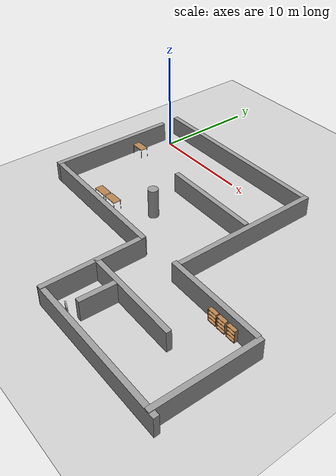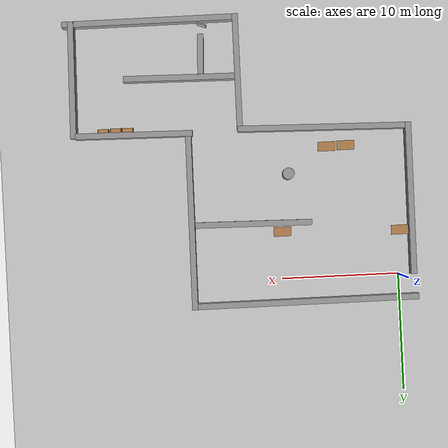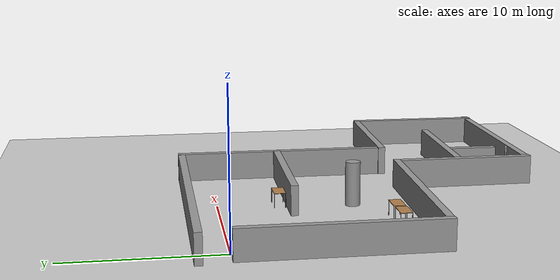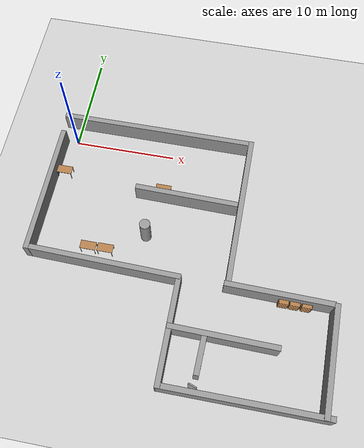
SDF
<sdf version="1.7">
 <world name="default">
  <light name="sun" type="directional">
   <pose>0 0 10 0 -0 0</pose>
   <diffuse>0.8 0.8 0.8 1</diffuse>
   <specular>0.2 0.2 0.2 1</specular>
   <attenuation>
    <range>1000</range>
    <constant>0.9</constant>
    <linear>0.01</linear>
    <quadratic>0.001</quadratic>
   </attenuation>
   <direction>-0.5 0.1 -0.9</direction>
   <spot><inner_angle>0</inner_angle><outer_angle>0</outer_angle><falloff>0</falloff></spot>
  </light>
  <model name="ground_plane">
   <static>1</static>
   <link name="link">
    <collision name="collision">
     <geometry><plane><normal>0 0 1</normal><size>100 100</size></plane></geometry>
     <surface><friction><ode><mu>100</mu><mu2>50</mu2></ode></friction></surface>
    </collision>
    <visual name="visual">
     <cast_shadows>0</cast_shadows>
     <geometry><plane><normal>0 0 1</normal><size>100 100</size></plane></geometry>
     <material>
      <script><uri>file://media/materials/scripts/gazebo.material</uri><name>Gazebo/Grey</name></script>
     </material>
    </visual>
   </link>
  </model>
  <gravity>0 0 -9.8</gravity>
  <magnetic_field>6e-06 2.3e-05 -4.2e-05</magnetic_field>
  <atmosphere type="adiabatic"/>
  <physics type="ode">
   <max_step_size>0.001</max_step_size>
   <real_time_factor>1</real_time_factor>
   <real_time_update_rate>1000</real_time_update_rate>
  </physics>
  <scene><ambient>0.4 0.4 0.4 1</ambient><background>0.7 0.7 0.7 1</background><shadows>1</shadows></scene>
  <audio><device>default</device></audio>
  <spherical_coordinates>
   <surface_model>EARTH_WGS84</surface_model>
   <latitude_deg>0</latitude_deg>
   <longitude_deg>0</longitude_deg>
   <elevation>0</elevation>
   <heading_deg>0</heading_deg>
  </spherical_coordinates>
  <model name="wall">
   <link name="link">
    <inertial>
     <mass>1</mass>
     <inertia>
      <ixx>0.166667</ixx>
      <ixy>0</ixy>
      <ixz>0</ixz>
      <iyy>0.166667</iyy>
      <iyz>0</iyz>
      <izz>0.166667</izz>
     </inertia>
    </inertial>
    <kinematic>1</kinematic>
    <visual name="visual">
     <geometry><box><size>19.1622 0.5 2</size></box></geometry>
     <material>
      <script><name>Gazebo/Grey</name><uri>file://media/materials/scripts/gazebo.material</uri></script>
      <shader type="pixel"><normal_map>__default__</normal_map></shader>
      <ambient>0.3 0.3 0.3 1</ambient>
      <diffuse>0.7 0.7 0.7 1</diffuse>
      <specular>0.01 0.01 0.01 1</specular>
      <emissive>0 0 0 1</emissive>
     </material>
    </visual>
    <collision name="collision">
     <laser_retro>100</laser_retro>
     <geometry><box><size>19.1622 0.5 3</size></box></geometry>
     <surface>
      <friction>
       <ode><mu>1</mu><mu2>1</mu2><fdir1>0 0 0</fdir1><slip1>0</slip1><slip2>0</slip2></ode>
       <torsional>
        <coefficient>1</coefficient>
        <patch_radius>0</patch_radius>
        <surface_radius>0</surface_radius>
        <use_patch_radius>1</use_patch_radius>
        <ode><slip>0</slip></ode>
       </torsional>
      </friction>
      <bounce><restitution_coefficient>0</restitution_coefficient><threshold>1e+06</threshold></bounce>
      <contact>
       <collide_without_contact>0</collide_without_contact>
       <collide_without_contact_bitmask>1</collide_without_contact_bitmask>
       <collide_bitmask>1</collide_bitmask>
       <ode>
        <soft_cfm>0</soft_cfm>
        <soft_erp>0.2</soft_erp>
        <kp>1e+13</kp>
        <kd>1</kd>
        <max_vel>0.01</max_vel>
        <min_depth>0</min_depth>
       </ode>
       <bullet>
        <split_impulse>1</split_impulse>
        <split_impulse_penetration_threshold>-0.01</split_impulse_penetration_threshold>
        <soft_cfm>0</soft_cfm>
        <soft_erp>0.2</soft_erp>
        <kp>1e+13</kp>
        <kd>1</kd>
       </bullet>
      </contact>
     </surface>
    </collision>
   </link>
   <static>0</static>
   <pose>8.0148 1.96015 0.938535 0 -0 0</pose>
  </model>
  <model name="wall_gate">
   <link name="link">
    <inertial>
     <mass>1</mass>
     <inertia>
      <ixx>0.166667</ixx>
      <ixy>0</ixy>
      <ixz>0</ixz>
      <iyy>0.166667</iyy>
      <iyz>0</iyz>
      <izz>0.166667</izz>
     </inertia>
    </inertial>
    <kinematic>1</kinematic>
    <visual name="visual">
     <geometry><box><size>13 0.5 2</size></box></geometry>
     <material>
      <script><name>Gazebo/Grey</name><uri>file://media/materials/scripts/gazebo.material</uri></script>
      <shader type="pixel"><normal_map>__default__</normal_map></shader>
      <ambient>0.3 0.3 0.3 1</ambient>
      <diffuse>0.7 0.7 0.7 1</diffuse>
      <specular>0.01 0.01 0.01 1</specular>
      <emissive>0 0 0 1</emissive>
     </material>
     <pose>-0.05 0 0 0 -0 0</pose>
    </visual>
    <collision name="collision">
     <laser_retro>100</laser_retro>
     <geometry><box><size>13 0.5 3</size></box></geometry>
     <surface>
      <friction>
       <ode><mu>1</mu><mu2>1</mu2><fdir1>0 0 0</fdir1><slip1>0</slip1><slip2>0</slip2></ode>
       <torsional>
        <coefficient>1</coefficient>
        <patch_radius>0</patch_radius>
        <surface_radius>0</surface_radius>
        <use_patch_radius>1</use_patch_radius>
        <ode><slip>0</slip></ode>
       </torsional>
      </friction>
      <bounce><restitution_coefficient>0</restitution_coefficient><threshold>1e+06</threshold></bounce>
      <contact>
       <collide_without_contact>0</collide_without_contact>
       <collide_without_contact_bitmask>1</collide_without_contact_bitmask>
       <collide_bitmask>1</collide_bitmask>
       <ode>
        <soft_cfm>0</soft_cfm>
        <soft_erp>0.2</soft_erp>
        <kp>1e+13</kp>
        <kd>1</kd>
        <max_vel>0.01</max_vel>
        <min_depth>0</min_depth>
       </ode>
       <bullet>
        <split_impulse>1</split_impulse>
        <split_impulse_penetration_threshold>-0.01</split_impulse_penetration_threshold>
        <soft_cfm>0</soft_cfm>
        <soft_erp>0.2</soft_erp>
        <kp>1e+13</kp>
        <kd>1</kd>
       </bullet>
      </contact>
     </surface>
    </collision>
   </link>
   <static>0</static>
   <pose>-1.2848 -6.53102 1.02614 0 0 -1.57913</pose>
  </model>
  <model name="table">
   <static>1</static>
   <link name="link">
    <collision name="surface">
     <pose>0 0 1 0 -0 0</pose>
     <geometry><box><size>1.5 0.8 0.03</size></box></geometry>
     <surface><friction><ode><mu>0.6</mu><mu2>0.6</mu2></ode></friction></surface>
    </collision>
    <visual name="visual1">
     <pose>0 0 1 0 -0 0</pose>
     <geometry><box><size>1.5 0.8 0.03</size></box></geometry>
     <material>
      <script><uri>file://media/materials/scripts/gazebo.material</uri><name>Gazebo/Wood</name></script>
     </material>
    </visual>
    <collision name="front_left_leg">
     <pose>0.68 0.38 0.5 0 -0 0</pose>
     <geometry><cylinder><radius>0.02</radius><length>1</length></cylinder></geometry>
    </collision>
    <visual name="front_left_leg">
     <pose>0.68 0.38 0.5 0 -0 0</pose>
     <geometry><cylinder><radius>0.02</radius><length>1</length></cylinder></geometry>
     <material>
      <script><uri>file://media/materials/scripts/gazebo.material</uri><name>Gazebo/Grey</name></script>
     </material>
    </visual>
    <collision name="front_right_leg">
     <pose>0.68 -0.38 0.5 0 -0 0</pose>
     <geometry><cylinder><radius>0.02</radius><length>1</length></cylinder></geometry>
    </collision>
    <visual name="front_right_leg">
     <pose>0.68 -0.38 0.5 0 -0 0</pose>
     <geometry><cylinder><radius>0.02</radius><length>1</length></cylinder></geometry>
     <material>
      <script><uri>file://media/materials/scripts/gazebo.material</uri><name>Gazebo/Grey</name></script>
     </material>
    </visual>
    <collision name="back_right_leg">
     <pose>-0.68 -0.38 0.5 0 -0 0</pose>
     <geometry><cylinder><radius>0.02</radius><length>1</length></cylinder></geometry>
    </collision>
    <visual name="back_right_leg">
     <pose>-0.68 -0.38 0.5 0 -0 0</pose>
     <geometry><cylinder><radius>0.02</radius><length>1</length></cylinder></geometry>
     <material>
      <script><uri>file://media/materials/scripts/gazebo.material</uri><name>Gazebo/Grey</name></script>
     </material>
    </visual>
    <collision name="back_left_leg">
     <pose>-0.68 0.38 0.5 0 -0 0</pose>
     <geometry><cylinder><radius>0.02</radius><length>1</length></cylinder></geometry>
    </collision>
    <visual name="back_left_leg">
     <pose>-0.68 0.38 0.5 0 -0 0</pose>
     <geometry><cylinder><radius>0.02</radius><length>1</length></cylinder></geometry>
     <material>
      <script><uri>file://media/materials/scripts/gazebo.material</uri><name>Gazebo/Grey</name></script>
     </material>
    </visual>
   </link>
   <pose>4.03644 -11.2797 0 0 -0 0</pose>
  </model>
  <model name="table_0">
   <static>1</static>
   <link name="link">
    <collision name="surface">
     <pose>0 0 1 0 -0 0</pose>
     <geometry><box><size>1.5 0.8 0.03</size></box></geometry>
     <surface><friction><ode><mu>0.6</mu><mu2>0.6</mu2></ode></friction></surface>
    </collision>
    <visual name="visual1">
     <pose>0 0 1 0 -0 0</pose>
     <geometry><box><size>1.5 0.8 0.03</size></box></geometry>
     <material>
      <script><uri>file://media/materials/scripts/gazebo.material</uri><name>Gazebo/Wood</name></script>
     </material>
    </visual>
    <collision name="front_left_leg">
     <pose>0.68 0.38 0.5 0 -0 0</pose>
     <geometry><cylinder><radius>0.02</radius><length>1</length></cylinder></geometry>
    </collision>
    <visual name="front_left_leg">
     <pose>0.68 0.38 0.5 0 -0 0</pose>
     <geometry><cylinder><radius>0.02</radius><length>1</length></cylinder></geometry>
     <material>
      <script><uri>file://media/materials/scripts/gazebo.material</uri><name>Gazebo/Grey</name></script>
     </material>
    </visual>
    <collision name="front_right_leg">
     <pose>0.68 -0.38 0.5 0 -0 0</pose>
     <geometry><cylinder><radius>0.02</radius><length>1</length></cylinder></geometry>
    </collision>
    <visual name="front_right_leg">
     <pose>0.68 -0.38 0.5 0 -0 0</pose>
     <geometry><cylinder><radius>0.02</radius><length>1</length></cylinder></geometry>
     <material>
      <script><uri>file://media/materials/scripts/gazebo.material</uri><name>Gazebo/Grey</name></script>
     </material>
    </visual>
    <collision name="back_right_leg">
     <pose>-0.68 -0.38 0.5 0 -0 0</pose>
     <geometry><cylinder><radius>0.02</radius><length>1</length></cylinder></geometry>
    </collision>
    <visual name="back_right_leg">
     <pose>-0.68 -0.38 0.5 0 -0 0</pose>
     <geometry><cylinder><radius>0.02</radius><length>1</length></cylinder></geometry>
     <material>
      <script><uri>file://media/materials/scripts/gazebo.material</uri><name>Gazebo/Grey</name></script>
     </material>
    </visual>
    <collision name="back_left_leg">
     <pose>-0.68 0.38 0.5 0 -0 0</pose>
     <geometry><cylinder><radius>0.02</radius><length>1</length></cylinder></geometry>
    </collision>
    <visual name="back_left_leg">
     <pose>-0.68 0.38 0.5 0 -0 0</pose>
     <geometry><cylinder><radius>0.02</radius><length>1</length></cylinder></geometry>
     <material>
      <script><uri>file://media/materials/scripts/gazebo.material</uri><name>Gazebo/Grey</name></script>
     </material>
    </visual>
   </link>
   <pose>5.6729 -11.2473 0 0 -0 0</pose>
  </model>
  <model name="unit_cylinder">
   <link name="link">
    <inertial>
     <mass>1</mass>
     <inertia><ixx>0.145833</ixx><ixy>0</ixy><ixz>0</ixz><iyy>0.145833</iyy><iyz>0</iyz><izz>0.125</izz></inertia>
    </inertial>
    <visual name="visual">
     <geometry><cylinder><radius>0.5</radius><length>3</length></cylinder></geometry>
     <material>
      <script><name>Gazebo/Grey</name><uri>file://media/materials/scripts/gazebo.material</uri></script>
      <shader type="pixel"><normal_map>__default__</normal_map></shader>
      <ambient>0.3 0.3 0.3 1</ambient>
      <diffuse>0.7 0.7 0.7 1</diffuse>
      <specular>0.01 0.01 0.01 1</specular>
      <emissive>0 0 0 1</emissive>
     </material>
    </visual>
    <collision name="collision">
     <laser_retro>100</laser_retro>
     <geometry><cylinder><radius>0.5</radius><length>3</length></cylinder></geometry>
     <surface>
      <friction>
       <ode><mu>1</mu><mu2>1</mu2><fdir1>0 0 0</fdir1><slip1>0</slip1><slip2>0</slip2></ode>
       <torsional>
        <coefficient>1</coefficient>
        <patch_radius>0</patch_radius>
        <surface_radius>0</surface_radius>
        <use_patch_radius>1</use_patch_radius>
        <ode><slip>0</slip></ode>
       </torsional>
      </friction>
      <bounce><restitution_coefficient>0</restitution_coefficient><threshold>1e+06</threshold></bounce>
      <contact>
       <collide_without_contact>0</collide_without_contact>
       <collide_without_contact_bitmask>1</collide_without_contact_bitmask>
       <collide_bitmask>1</collide_bitmask>
       <ode>
        <soft_cfm>0</soft_cfm>
        <soft_erp>0.2</soft_erp>
        <kp>1e+13</kp>
        <kd>1</kd>
        <max_vel>0.01</max_vel>
        <min_depth>0</min_depth>
       </ode>
       <bullet>
        <split_impulse>1</split_impulse>
        <split_impulse_penetration_threshold>-0.01</split_impulse_penetration_threshold>
        <soft_cfm>0</soft_cfm>
        <soft_erp>0.2</soft_erp>
        <kp>1e+13</kp>
        <kd>1</kd>
       </bullet>
      </contact>
     </surface>
    </collision>
   </link>
   <static>0</static>
   <pose>9.09469 -9.03429 1.5 -0 -0 -6.9e-05</pose>
  </model>
  <model name="wall_clone">
   <link name="link">
    <inertial>
     <mass>1</mass>
     <inertia>
      <ixx>0.166667</ixx>
      <ixy>0</ixy>
      <ixz>0</ixz>
      <iyy>0.166667</iyy>
      <iyz>0</iyz>
      <izz>0.166667</izz>
     </inertia>
    </inertial>
    <kinematic>1</kinematic>
    <visual name="visual">
     <geometry><box><size>15 0.5 3</size></box></geometry>
     <material>
      <script><name>Gazebo/Grey</name><uri>file://media/materials/scripts/gazebo.material</uri></script>
      <shader type="pixel"><normal_map>__default__</normal_map></shader>
      <ambient>0.3 0.3 0.3 1</ambient>
      <diffuse>0.7 0.7 0.7 1</diffuse>
      <specular>0.01 0.01 0.01 1</specular>
      <emissive>0 0 0 1</emissive>
     </material>
    </visual>
    <collision name="collision">
     <geometry><box><size>15 0.5 3</size></box></geometry>
     <surface>
      <friction>
       <ode><mu>1</mu><mu2>1</mu2><fdir1>0 0 0</fdir1><slip1>0</slip1><slip2>0</slip2></ode>
       <torsional>
        <coefficient>1</coefficient>
        <patch_radius>0</patch_radius>
        <surface_radius>0</surface_radius>
        <use_patch_radius>1</use_patch_radius>
        <ode><slip>0</slip></ode>
       </torsional>
      </friction>
      <bounce><restitution_coefficient>0</restitution_coefficient><threshold>1e+06</threshold></bounce>
      <contact>
       <collide_without_contact>0</collide_without_contact>
       <collide_without_contact_bitmask>1</collide_without_contact_bitmask>
       <collide_bitmask>1</collide_bitmask>
       <ode>
        <soft_cfm>0</soft_cfm>
        <soft_erp>0.2</soft_erp>
        <kp>1e+13</kp>
        <kd>1</kd>
        <max_vel>0.01</max_vel>
        <min_depth>0</min_depth>
       </ode>
       <bullet>
        <split_impulse>1</split_impulse>
        <split_impulse_penetration_threshold>-0.01</split_impulse_penetration_threshold>
        <soft_cfm>0</soft_cfm>
        <soft_erp>0.2</soft_erp>
        <kp>1e+13</kp>
        <kd>1</kd>
       </bullet>
      </contact>
     </surface>
    </collision>
   </link>
   <static>0</static>
   <pose>17.5539 -5.2855 0.449624 0 0 -1.57913</pose>
  </model>
  <model name="interior_wall">
   <link name="link">
    <inertial>
     <mass>1</mass>
     <inertia>
      <ixx>0.166667</ixx>
      <ixy>0</ixy>
      <ixz>0</ixz>
      <iyy>0.166667</iyy>
      <iyz>0</iyz>
      <izz>0.166667</izz>
     </inertia>
    </inertial>
    <kinematic>1</kinematic>
    <visual name="visual">
     <geometry><box><size>10 0.5 3</size></box></geometry>
     <material>
      <script><name>Gazebo/Grey</name><uri>file://media/materials/scripts/gazebo.material</uri></script>
      <shader type="pixel"><normal_map>__default__</normal_map></shader>
      <ambient>0.3 0.3 0.3 1</ambient>
      <diffuse>0.7 0.7 0.7 1</diffuse>
      <specular>0.01 0.01 0.01 1</specular>
      <emissive>0 0 0 1</emissive>
     </material>
    </visual>
    <collision name="collision">
     <geometry><box><size>10 0.5 3</size></box></geometry>
     <surface>
      <friction>
       <ode><mu>1</mu><mu2>1</mu2><fdir1>0 0 0</fdir1><slip1>0</slip1><slip2>0</slip2></ode>
       <torsional>
        <coefficient>1</coefficient>
        <patch_radius>0</patch_radius>
        <surface_radius>0</surface_radius>
        <use_patch_radius>1</use_patch_radius>
        <ode><slip>0</slip></ode>
       </torsional>
      </friction>
      <bounce><restitution_coefficient>0</restitution_coefficient><threshold>1e+06</threshold></bounce>
      <contact>
       <collide_without_contact>0</collide_without_contact>
       <collide_without_contact_bitmask>1</collide_without_contact_bitmask>
       <collide_bitmask>1</collide_bitmask>
       <ode>
        <soft_cfm>0</soft_cfm>
        <soft_erp>0.2</soft_erp>
        <kp>1e+13</kp>
        <kd>1</kd>
        <max_vel>0.01</max_vel>
        <min_depth>0</min_depth>
       </ode>
       <bullet>
        <split_impulse>1</split_impulse>
        <split_impulse_penetration_threshold>-0.01</split_impulse_penetration_threshold>
        <soft_cfm>0</soft_cfm>
        <soft_erp>0.2</soft_erp>
        <kp>1e+13</kp>
        <kd>1</kd>
       </bullet>
      </contact>
     </surface>
    </collision>
   </link>
   <static>0</static>
   <pose>12.2489 -4.91073 0.5 0 0 -0.017865</pose>
  </model>
  <model name="table_1">
   <static>1</static>
   <link name="link">
    <collision name="surface">
     <pose>0 0 1 0 -0 0</pose>
     <geometry><box><size>1.5 0.8 0.03</size></box></geometry>
     <surface><friction><ode><mu>0.6</mu><mu2>0.6</mu2></ode></friction></surface>
    </collision>
    <visual name="visual1">
     <pose>0 0 1 0 -0 0</pose>
     <geometry><box><size>1.5 0.8 0.03</size></box></geometry>
     <material>
      <script><uri>file://media/materials/scripts/gazebo.material</uri><name>Gazebo/Wood</name></script>
     </material>
    </visual>
    <collision name="front_left_leg">
     <pose>0.68 0.38 0.5 0 -0 0</pose>
     <geometry><cylinder><radius>0.02</radius><length>1</length></cylinder></geometry>
    </collision>
    <visual name="front_left_leg">
     <pose>0.68 0.38 0.5 0 -0 0</pose>
     <geometry><cylinder><radius>0.02</radius><length>1</length></cylinder></geometry>
     <material>
      <script><uri>file://media/materials/scripts/gazebo.material</uri><name>Gazebo/Grey</name></script>
     </material>
    </visual>
    <collision name="front_right_leg">
     <pose>0.68 -0.38 0.5 0 -0 0</pose>
     <geometry><cylinder><radius>0.02</radius><length>1</length></cylinder></geometry>
    </collision>
    <visual name="front_right_leg">
     <pose>0.68 -0.38 0.5 0 -0 0</pose>
     <geometry><cylinder><radius>0.02</radius><length>1</length></cylinder></geometry>
     <material>
      <script><uri>file://media/materials/scripts/gazebo.material</uri><name>Gazebo/Grey</name></script>
     </material>
    </visual>
    <collision name="back_right_leg">
     <pose>-0.68 -0.38 0.5 0 -0 0</pose>
     <geometry><cylinder><radius>0.02</radius><length>1</length></cylinder></geometry>
    </collision>
    <visual name="back_right_leg">
     <pose>-0.68 -0.38 0.5 0 -0 0</pose>
     <geometry><cylinder><radius>0.02</radius><length>1</length></cylinder></geometry>
     <material>
      <script><uri>file://media/materials/scripts/gazebo.material</uri><name>Gazebo/Grey</name></script>
     </material>
    </visual>
    <collision name="back_left_leg">
     <pose>-0.68 0.38 0.5 0 -0 0</pose>
     <geometry><cylinder><radius>0.02</radius><length>1</length></cylinder></geometry>
    </collision>
    <visual name="back_left_leg">
     <pose>-0.68 0.38 0.5 0 -0 0</pose>
     <geometry><cylinder><radius>0.02</radius><length>1</length></cylinder></geometry>
     <material>
      <script><uri>file://media/materials/scripts/gazebo.material</uri><name>Gazebo/Grey</name></script>
     </material>
    </visual>
   </link>
   <pose>9.81749 -4.1127 0 0 -0 0</pose>
  </model>
  <model name="interior_wall_clone">
   <link name="link">
    <inertial>
     <mass>1</mass>
     <inertia>
      <ixx>0.166667</ixx>
      <ixy>0</ixy>
      <ixz>0</ixz>
      <iyy>0.166667</iyy>
      <iyz>0</iyz>
      <izz>0.166667</izz>
     </inertia>
    </inertial>
    <kinematic>1</kinematic>
    <visual name="visual">
     <geometry><box><size>10 0.5 3</size></box></geometry>
     <material>
      <script><name>Gazebo/Grey</name><uri>file://media/materials/scripts/gazebo.material</uri></script>
      <shader type="pixel"><normal_map>__default__</normal_map></shader>
      <ambient>0.3 0.3 0.3 1</ambient>
      <diffuse>0.7 0.7 0.7 1</diffuse>
      <specular>0.01 0.01 0.01 1</specular>
      <emissive>0 0 0 1</emissive>
     </material>
    </visual>
    <collision name="collision">
     <geometry><box><size>10 0.5 3</size></box></geometry>
     <surface>
      <friction>
       <ode><mu>1</mu><mu2>1</mu2><fdir1>0 0 0</fdir1><slip1>0</slip1><slip2>0</slip2></ode>
       <torsional>
        <coefficient>1</coefficient>
        <patch_radius>0</patch_radius>
        <surface_radius>0</surface_radius>
        <use_patch_radius>1</use_patch_radius>
        <ode><slip>0</slip></ode>
       </torsional>
      </friction>
      <bounce><restitution_coefficient>0</restitution_coefficient><threshold>1e+06</threshold></bounce>
      <contact>
       <collide_without_contact>0</collide_without_contact>
       <collide_without_contact_bitmask>1</collide_without_contact_bitmask>
       <collide_bitmask>1</collide_bitmask>
       <ode>
        <soft_cfm>0</soft_cfm>
        <soft_erp>0.2</soft_erp>
        <kp>1e+13</kp>
        <kd>1</kd>
        <max_vel>0.01</max_vel>
        <min_depth>0</min_depth>
       </ode>
       <bullet>
        <split_impulse>1</split_impulse>
        <split_impulse_penetration_threshold>-0.01</split_impulse_penetration_threshold>
        <soft_cfm>0</soft_cfm>
        <soft_erp>0.2</soft_erp>
        <kp>1e+13</kp>
        <kd>1</kd>
       </bullet>
      </contact>
     </surface>
    </collision>
   </link>
   <static>0</static>
   <pose>22.1258 -13.0097 0.5 0 0 -0.017865</pose>
  </model>
  <model name="interior_wall_clone_0">
   <link name="link">
    <inertial>
     <mass>1</mass>
     <inertia>
      <ixx>0.166667</ixx>
      <ixy>0</ixy>
      <ixz>0</ixz>
      <iyy>0.166667</iyy>
      <iyz>0</iyz>
      <izz>0.166667</izz>
     </inertia>
    </inertial>
    <kinematic>1</kinematic>
    <visual name="visual">
     <geometry><box><size>10 0.5 3</size></box></geometry>
     <material>
      <script><name>Gazebo/Grey</name><uri>file://media/materials/scripts/gazebo.material</uri></script>
      <shader type="pixel"><normal_map>__default__</normal_map></shader>
      <ambient>0.3 0.3 0.3 1</ambient>
      <diffuse>0.7 0.7 0.7 1</diffuse>
      <specular>0.01 0.01 0.01 1</specular>
      <emissive>0 0 0 1</emissive>
     </material>
    </visual>
    <collision name="collision">
     <geometry><box><size>10 0.5 3</size></box></geometry>
     <surface>
      <friction>
       <ode><mu>1</mu><mu2>1</mu2><fdir1>0 0 0</fdir1><slip1>0</slip1><slip2>0</slip2></ode>
       <torsional>
        <coefficient>1</coefficient>
        <patch_radius>0</patch_radius>
        <surface_radius>0</surface_radius>
        <use_patch_radius>1</use_patch_radius>
        <ode><slip>0</slip></ode>
       </torsional>
      </friction>
      <bounce><restitution_coefficient>0</restitution_coefficient><threshold>1e+06</threshold></bounce>
      <contact>
       <collide_without_contact>0</collide_without_contact>
       <collide_without_contact_bitmask>1</collide_without_contact_bitmask>
       <collide_bitmask>1</collide_bitmask>
       <ode>
        <soft_cfm>0</soft_cfm>
        <soft_erp>0.2</soft_erp>
        <kp>1e+13</kp>
        <kd>1</kd>
        <max_vel>0.01</max_vel>
        <min_depth>0</min_depth>
       </ode>
       <bullet>
        <split_impulse>1</split_impulse>
        <split_impulse_penetration_threshold>-0.01</split_impulse_penetration_threshold>
        <soft_cfm>0</soft_cfm>
        <soft_erp>0.2</soft_erp>
        <kp>1e+13</kp>
        <kd>1</kd>
       </bullet>
      </contact>
     </surface>
    </collision>
   </link>
   <static>0</static>
   <pose>13.0207 -17.9573 0.5 0 0 -1.5749</pose>
  </model>
  <model name="wall_0_clone">
   <link name="link">
    <inertial>
     <mass>1</mass>
     <inertia>
      <ixx>0.166667</ixx>
      <ixy>0</ixy>
      <ixz>0</ixz>
      <iyy>0.166667</iyy>
      <iyz>0</iyz>
      <izz>0.166667</izz>
     </inertia>
    </inertial>
    <kinematic>1</kinematic>
    <visual name="visual">
     <geometry><box><size>15 0.5 2</size></box></geometry>
     <material>
      <script><name>Gazebo/Grey</name><uri>file://media/materials/scripts/gazebo.material</uri></script>
      <shader type="pixel"><normal_map>__default__</normal_map></shader>
      <ambient>0.3 0.3 0.3 1</ambient>
      <diffuse>0.7 0.7 0.7 1</diffuse>
      <specular>0.01 0.01 0.01 1</specular>
      <emissive>0 0 0 1</emissive>
     </material>
    </visual>
    <collision name="collision">
     <geometry><box><size>15 0.5 3</size></box></geometry>
     <surface>
      <friction>
       <ode><mu>1</mu><mu2>1</mu2><fdir1>0 0 0</fdir1><slip1>0</slip1><slip2>0</slip2></ode>
       <torsional>
        <coefficient>1</coefficient>
        <patch_radius>0</patch_radius>
        <surface_radius>0</surface_radius>
        <use_patch_radius>1</use_patch_radius>
        <ode><slip>0</slip></ode>
       </torsional>
      </friction>
      <bounce><restitution_coefficient>0</restitution_coefficient><threshold>1e+06</threshold></bounce>
      <contact>
       <collide_without_contact>0</collide_without_contact>
       <collide_without_contact_bitmask>1</collide_without_contact_bitmask>
       <collide_bitmask>1</collide_bitmask>
       <ode>
        <soft_cfm>0</soft_cfm>
        <soft_erp>0.2</soft_erp>
        <kp>1e+13</kp>
        <kd>1</kd>
        <max_vel>0.01</max_vel>
        <min_depth>0</min_depth>
       </ode>
       <bullet>
        <split_impulse>1</split_impulse>
        <split_impulse_penetration_threshold>-0.01</split_impulse_penetration_threshold>
        <soft_cfm>0</soft_cfm>
        <soft_erp>0.2</soft_erp>
        <kp>1e+13</kp>
        <kd>1</kd>
       </bullet>
      </contact>
     </surface>
    </collision>
   </link>
   <static>0</static>
   <pose>20.3384 -22.7141 0.948456 0 -0 0</pose>
  </model>
  <model name="interior_wall_clone_0_clone">
   <link name="link">
    <inertial>
     <mass>1</mass>
     <inertia>
      <ixx>0.166667</ixx>
      <ixy>0</ixy>
      <ixz>0</ixz>
      <iyy>0.166667</iyy>
      <iyz>0</iyz>
      <izz>0.166667</izz>
     </inertia>
    </inertial>
    <kinematic>1</kinematic>
    <visual name="visual">
     <geometry><box><size>10 0.5 3</size></box></geometry>
     <material>
      <script><name>Gazebo/Grey</name><uri>file://media/materials/scripts/gazebo.material</uri></script>
      <shader type="pixel"><normal_map>__default__</normal_map></shader>
      <ambient>0.3 0.3 0.3 1</ambient>
      <diffuse>0.7 0.7 0.7 1</diffuse>
      <specular>0.01 0.01 0.01 1</specular>
      <emissive>0 0 0 1</emissive>
     </material>
    </visual>
    <collision name="collision">
     <geometry><box><size>10 0.5 3</size></box></geometry>
     <surface>
      <friction>
       <ode><mu>1</mu><mu2>1</mu2><fdir1>0 0 0</fdir1><slip1>0</slip1><slip2>0</slip2></ode>
       <torsional>
        <coefficient>1</coefficient>
        <patch_radius>0</patch_radius>
        <surface_radius>0</surface_radius>
        <use_patch_radius>1</use_patch_radius>
        <ode><slip>0</slip></ode>
       </torsional>
      </friction>
      <bounce><restitution_coefficient>0</restitution_coefficient><threshold>1e+06</threshold></bounce>
      <contact>
       <collide_without_contact>0</collide_without_contact>
       <collide_without_contact_bitmask>1</collide_without_contact_bitmask>
       <collide_bitmask>1</collide_bitmask>
       <ode>
        <soft_cfm>0</soft_cfm>
        <soft_erp>0.2</soft_erp>
        <kp>1e+13</kp>
        <kd>1</kd>
        <max_vel>0.01</max_vel>
        <min_depth>0</min_depth>
       </ode>
       <bullet>
        <split_impulse>1</split_impulse>
        <split_impulse_penetration_threshold>-0.01</split_impulse_penetration_threshold>
        <soft_cfm>0</soft_cfm>
        <soft_erp>0.2</soft_erp>
        <kp>1e+13</kp>
        <kd>1</kd>
       </bullet>
      </contact>
     </surface>
    </collision>
   </link>
   <static>0</static>
   <pose>27.1947 -17.941 0.5 0 0 -1.59239</pose>
  </model>
  <model name="interior_wall_clone_clone">
   <link name="link">
    <inertial>
     <mass>1</mass>
     <inertia>
      <ixx>0.166667</ixx>
      <ixy>0</ixy>
      <ixz>0</ixz>
      <iyy>0.166667</iyy>
      <iyz>0</iyz>
      <izz>0.166667</izz>
     </inertia>
    </inertial>
    <kinematic>1</kinematic>
    <visual name="visual">
     <geometry><box><size>10 0.5 3</size></box></geometry>
     <material>
      <script><name>Gazebo/Grey</name><uri>file://media/materials/scripts/gazebo.material</uri></script>
      <shader type="pixel"><normal_map>__default__</normal_map></shader>
      <ambient>0.3 0.3 0.3 1</ambient>
      <diffuse>0.7 0.7 0.7 1</diffuse>
      <specular>0.01 0.01 0.01 1</specular>
      <emissive>0 0 0 1</emissive>
     </material>
    </visual>
    <collision name="collision">
     <geometry><box><size>10 0.5 3</size></box></geometry>
     <surface>
      <friction>
       <ode><mu>1</mu><mu2>1</mu2><fdir1>0 0 0</fdir1><slip1>0</slip1><slip2>0</slip2></ode>
       <torsional>
        <coefficient>1</coefficient>
        <patch_radius>0</patch_radius>
        <surface_radius>0</surface_radius>
        <use_patch_radius>1</use_patch_radius>
        <ode><slip>0</slip></ode>
       </torsional>
      </friction>
      <bounce><restitution_coefficient>0</restitution_coefficient><threshold>1e+06</threshold></bounce>
      <contact>
       <collide_without_contact>0</collide_without_contact>
       <collide_without_contact_bitmask>1</collide_without_contact_bitmask>
       <collide_bitmask>1</collide_bitmask>
       <ode>
        <soft_cfm>0</soft_cfm>
        <soft_erp>0.2</soft_erp>
        <kp>1e+13</kp>
        <kd>1</kd>
        <max_vel>0.01</max_vel>
        <min_depth>0</min_depth>
       </ode>
       <bullet>
        <split_impulse>1</split_impulse>
        <split_impulse_penetration_threshold>-0.01</split_impulse_penetration_threshold>
        <soft_cfm>0</soft_cfm>
        <soft_erp>0.2</soft_erp>
        <kp>1e+13</kp>
        <kd>1</kd>
       </bullet>
      </contact>
     </surface>
    </collision>
   </link>
   <static>0</static>
   <pose>17.7959 -17.7184 0.5 0 0 -0.017865</pose>
  </model>
  <model name="door_08x2m">
   <link name="link">
    <visual name="visual">
     <geometry><box><size>0.1 0.8 2</size></box></geometry>
     <material>
      <script>
       <uri>https://fuel.ignitionrobotics.org/1.0/makerspet/models/door_08x2m/1/files/material/script</uri>
       <uri>https://fuel.ignitionrobotics.org/1.0/makerspet/models/door_08x2m/1/files/material/textures</uri>
       <name>Custom/door_08x2m</name>
      </script>
     </material>
    </visual>
   </link>
   <static>1</static>
   <pose>15.8866 -22.1944 0.980818 0 -0 1.23466</pose>
  </model>
  <model name="interior_wall_clone_clone_clone">
   <link name="link">
    <inertial>
     <mass>1</mass>
     <inertia>
      <ixx>0.166667</ixx>
      <ixy>0</ixy>
      <ixz>0</ixz>
      <iyy>0.166667</iyy>
      <iyz>0</iyz>
      <izz>0.166667</izz>
     </inertia>
    </inertial>
    <kinematic>1</kinematic>
    <visual name="visual">
     <geometry><box><size>3.5 0.5 3</size></box></geometry>
     <material>
      <script><name>Gazebo/Grey</name><uri>file://media/materials/scripts/gazebo.material</uri></script>
      <shader type="pixel"><normal_map>__default__</normal_map></shader>
      <ambient>0.3 0.3 0.3 1</ambient>
      <diffuse>0.7 0.7 0.7 1</diffuse>
      <specular>0.01 0.01 0.01 1</specular>
      <emissive>0 0 0 1</emissive>
     </material>
    </visual>
    <collision name="collision">
     <geometry><box><size>3.5 0.5 3</size></box></geometry>
     <surface>
      <friction>
       <ode><mu>1</mu><mu2>1</mu2><fdir1>0 0 0</fdir1><slip1>0</slip1><slip2>0</slip2></ode>
       <torsional>
        <coefficient>1</coefficient>
        <patch_radius>0</patch_radius>
        <surface_radius>0</surface_radius>
        <use_patch_radius>1</use_patch_radius>
        <ode><slip>0</slip></ode>
       </torsional>
      </friction>
      <bounce><restitution_coefficient>0</restitution_coefficient><threshold>1e+06</threshold></bounce>
      <contact>
       <collide_without_contact>0</collide_without_contact>
       <collide_without_contact_bitmask>1</collide_without_contact_bitmask>
       <collide_bitmask>1</collide_bitmask>
       <ode>
        <soft_cfm>0</soft_cfm>
        <soft_erp>0.2</soft_erp>
        <kp>1e+13</kp>
        <kd>1</kd>
        <max_vel>0.01</max_vel>
        <min_depth>0</min_depth>
       </ode>
       <bullet>
        <split_impulse>1</split_impulse>
        <split_impulse_penetration_threshold>-0.01</split_impulse_penetration_threshold>
        <soft_cfm>0</soft_cfm>
        <soft_erp>0.2</soft_erp>
        <kp>1e+13</kp>
        <kd>1</kd>
       </bullet>
      </contact>
     </surface>
    </collision>
   </link>
   <static>0</static>
   <pose>16.1045 -19.6025 0.5 0 0 -1.61014</pose>
  </model>
  <model name="bookshelf">
   <static>1</static>
   <link name="link">
    <inertial><mass>1</mass></inertial>
    <collision name="back">
     <pose>0 0.005 0.6 0 -0 0</pose>
     <geometry><box><size>0.9 0.01 1.2</size></box></geometry>
    </collision>
    <visual name="visual1">
     <pose>0 0.005 0.6 0 -0 0</pose>
     <geometry><box><size>0.9 0.01 1.2</size></box></geometry>
     <material>
      <script><uri>file://media/materials/scripts/gazebo.material</uri><name>Gazebo/Wood</name></script>
     </material>
    </visual>
    <collision name="left_side">
     <pose>0.45 -0.195 0.6 0 -0 0</pose>
     <geometry><box><size>0.02 0.4 1.2</size></box></geometry>
    </collision>
    <visual name="visual2">
     <pose>0.45 -0.195 0.6 0 -0 0</pose>
     <geometry><box><size>0.02 0.4 1.2</size></box></geometry>
     <material>
      <script><uri>file://media/materials/scripts/gazebo.material</uri><name>Gazebo/Wood</name></script>
     </material>
    </visual>
    <collision name="right_side">
     <pose>-0.45 -0.195 0.6 0 -0 0</pose>
     <geometry><box><size>0.02 0.4 1.2</size></box></geometry>
    </collision>
    <visual name="visual3">
     <pose>-0.45 -0.195 0.6 0 -0 0</pose>
     <geometry><box><size>0.02 0.4 1.2</size></box></geometry>
     <material>
      <script><uri>file://media/materials/scripts/gazebo.material</uri><name>Gazebo/Wood</name></script>
     </material>
    </visual>
    <collision name="bottom">
     <pose>0 -0.195 0.03 0 -0 0</pose>
     <geometry><box><size>0.88 0.4 0.06</size></box></geometry>
    </collision>
    <visual name="visual4">
     <pose>0 -0.195 0.03 0 -0 0</pose>
     <geometry><box><size>0.88 0.4 0.06</size></box></geometry>
     <material>
      <script><uri>file://media/materials/scripts/gazebo.material</uri><name>Gazebo/Wood</name></script>
     </material>
    </visual>
    <collision name="top">
     <pose>0 -0.195 1.19 0 -0 0</pose>
     <geometry><box><size>0.88 0.4 0.02</size></box></geometry>
    </collision>
    <visual name="visual5">
     <pose>0 -0.195 1.19 0 -0 0</pose>
     <geometry><box><size>0.88 0.4 0.02</size></box></geometry>
     <material>
      <script><uri>file://media/materials/scripts/gazebo.material</uri><name>Gazebo/Wood</name></script>
     </material>
    </visual>
    <collision name="low_shelf">
     <pose>0 -0.195 0.43 0 -0 0</pose>
     <geometry><box><size>0.88 0.4 0.02</size></box></geometry>
    </collision>
    <visual name="visual6">
     <pose>0 -0.195 0.43 0 -0 0</pose>
     <geometry><box><size>0.88 0.4 0.02</size></box></geometry>
     <material>
      <script><uri>file://media/materials/scripts/gazebo.material</uri><name>Gazebo/Wood</name></script>
     </material>
    </visual>
    <collision name="high_shelf">
     <pose>0 -0.195 0.8 0 -0 0</pose>
     <geometry><box><size>0.88 0.4 0.02</size></box></geometry>
    </collision>
    <visual name="visual7">
     <pose>0 -0.195 0.8 0 -0 0</pose>
     <geometry><box><size>0.88 0.4 0.02</size></box></geometry>
     <material>
      <script><uri>file://media/materials/scripts/gazebo.material</uri><name>Gazebo/Wood</name></script>
     </material>
    </visual>
   </link>
   <pose>22.6839 -13.2601 0 0 -0 0</pose>
  </model>
  <model name="bookshelf_0">
   <static>1</static>
   <link name="link">
    <inertial><mass>1</mass></inertial>
    <collision name="back">
     <pose>0 0.005 0.6 0 -0 0</pose>
     <geometry><box><size>0.9 0.01 1.2</size></box></geometry>
    </collision>
    <visual name="visual1">
     <pose>0 0.005 0.6 0 -0 0</pose>
     <geometry><box><size>0.9 0.01 1.2</size></box></geometry>
     <material>
      <script><uri>file://media/materials/scripts/gazebo.material</uri><name>Gazebo/Wood</name></script>
     </material>
    </visual>
    <collision name="left_side">
     <pose>0.45 -0.195 0.6 0 -0 0</pose>
     <geometry><box><size>0.02 0.4 1.2</size></box></geometry>
    </collision>
    <visual name="visual2">
     <pose>0.45 -0.195 0.6 0 -0 0</pose>
     <geometry><box><size>0.02 0.4 1.2</size></box></geometry>
     <material>
      <script><uri>file://media/materials/scripts/gazebo.material</uri><name>Gazebo/Wood</name></script>
     </material>
    </visual>
    <collision name="right_side">
     <pose>-0.45 -0.195 0.6 0 -0 0</pose>
     <geometry><box><size>0.02 0.4 1.2</size></box></geometry>
    </collision>
    <visual name="visual3">
     <pose>-0.45 -0.195 0.6 0 -0 0</pose>
     <geometry><box><size>0.02 0.4 1.2</size></box></geometry>
     <material>
      <script><uri>file://media/materials/scripts/gazebo.material</uri><name>Gazebo/Wood</name></script>
     </material>
    </visual>
    <collision name="bottom">
     <pose>0 -0.195 0.03 0 -0 0</pose>
     <geometry><box><size>0.88 0.4 0.06</size></box></geometry>
    </collision>
    <visual name="visual4">
     <pose>0 -0.195 0.03 0 -0 0</pose>
     <geometry><box><size>0.88 0.4 0.06</size></box></geometry>
     <material>
      <script><uri>file://media/materials/scripts/gazebo.material</uri><name>Gazebo/Wood</name></script>
     </material>
    </visual>
    <collision name="top">
     <pose>0 -0.195 1.19 0 -0 0</pose>
     <geometry><box><size>0.88 0.4 0.02</size></box></geometry>
    </collision>
    <visual name="visual5">
     <pose>0 -0.195 1.19 0 -0 0</pose>
     <geometry><box><size>0.88 0.4 0.02</size></box></geometry>
     <material>
      <script><uri>file://media/materials/scripts/gazebo.material</uri><name>Gazebo/Wood</name></script>
     </material>
    </visual>
    <collision name="low_shelf">
     <pose>0 -0.195 0.43 0 -0 0</pose>
     <geometry><box><size>0.88 0.4 0.02</size></box></geometry>
    </collision>
    <visual name="visual6">
     <pose>0 -0.195 0.43 0 -0 0</pose>
     <geometry><box><size>0.88 0.4 0.02</size></box></geometry>
     <material>
      <script><uri>file://media/materials/scripts/gazebo.material</uri><name>Gazebo/Wood</name></script>
     </material>
    </visual>
    <collision name="high_shelf">
     <pose>0 -0.195 0.8 0 -0 0</pose>
     <geometry><box><size>0.88 0.4 0.02</size></box></geometry>
    </collision>
    <visual name="visual7">
     <pose>0 -0.195 0.8 0 -0 0</pose>
     <geometry><box><size>0.88 0.4 0.02</size></box></geometry>
     <material>
      <script><uri>file://media/materials/scripts/gazebo.material</uri><name>Gazebo/Wood</name></script>
     </material>
    </visual>
   </link>
   <pose>23.6902 -13.2711 0 0 -0 0</pose>
  </model>
  <model name="bookshelf_1">
   <static>1</static>
   <link name="link">
    <inertial><mass>1</mass></inertial>
    <collision name="back">
     <pose>0 0.005 0.6 0 -0 0</pose>
     <geometry><box><size>0.9 0.01 1.2</size></box></geometry>
    </collision>
    <visual name="visual1">
     <pose>0 0.005 0.6 0 -0 0</pose>
     <geometry><box><size>0.9 0.01 1.2</size></box></geometry>
     <material>
      <script><uri>file://media/materials/scripts/gazebo.material</uri><name>Gazebo/Wood</name></script>
     </material>
    </visual>
    <collision name="left_side">
     <pose>0.45 -0.195 0.6 0 -0 0</pose>
     <geometry><box><size>0.02 0.4 1.2</size></box></geometry>
    </collision>
    <visual name="visual2">
     <pose>0.45 -0.195 0.6 0 -0 0</pose>
     <geometry><box><size>0.02 0.4 1.2</size></box></geometry>
     <material>
      <script><uri>file://media/materials/scripts/gazebo.material</uri><name>Gazebo/Wood</name></script>
     </material>
    </visual>
    <collision name="right_side">
     <pose>-0.45 -0.195 0.6 0 -0 0</pose>
     <geometry><box><size>0.02 0.4 1.2</size></box></geometry>
    </collision>
    <visual name="visual3">
     <pose>-0.45 -0.195 0.6 0 -0 0</pose>
     <geometry><box><size>0.02 0.4 1.2</size></box></geometry>
     <material>
      <script><uri>file://media/materials/scripts/gazebo.material</uri><name>Gazebo/Wood</name></script>
     </material>
    </visual>
    <collision name="bottom">
     <pose>0 -0.195 0.03 0 -0 0</pose>
     <geometry><box><size>0.88 0.4 0.06</size></box></geometry>
    </collision>
    <visual name="visual4">
     <pose>0 -0.195 0.03 0 -0 0</pose>
     <geometry><box><size>0.88 0.4 0.06</size></box></geometry>
     <material>
      <script><uri>file://media/materials/scripts/gazebo.material</uri><name>Gazebo/Wood</name></script>
     </material>
    </visual>
    <collision name="top">
     <pose>0 -0.195 1.19 0 -0 0</pose>
     <geometry><box><size>0.88 0.4 0.02</size></box></geometry>
    </collision>
    <visual name="visual5">
     <pose>0 -0.195 1.19 0 -0 0</pose>
     <geometry><box><size>0.88 0.4 0.02</size></box></geometry>
     <material>
      <script><uri>file://media/materials/scripts/gazebo.material</uri><name>Gazebo/Wood</name></script>
     </material>
    </visual>
    <collision name="low_shelf">
     <pose>0 -0.195 0.43 0 -0 0</pose>
     <geometry><box><size>0.88 0.4 0.02</size></box></geometry>
    </collision>
    <visual name="visual6">
     <pose>0 -0.195 0.43 0 -0 0</pose>
     <geometry><box><size>0.88 0.4 0.02</size></box></geometry>
     <material>
      <script><uri>file://media/materials/scripts/gazebo.material</uri><name>Gazebo/Wood</name></script>
     </material>
    </visual>
    <collision name="high_shelf">
     <pose>0 -0.195 0.8 0 -0 0</pose>
     <geometry><box><size>0.88 0.4 0.02</size></box></geometry>
    </collision>
    <visual name="visual7">
     <pose>0 -0.195 0.8 0 -0 0</pose>
     <geometry><box><size>0.88 0.4 0.02</size></box></geometry>
     <material>
      <script><uri>file://media/materials/scripts/gazebo.material</uri><name>Gazebo/Wood</name></script>
     </material>
    </visual>
   </link>
   <pose>24.7774 -13.2613 0 0 -0 0</pose>
  </model>
  <model name="wall_0">
   <link name="link">
    <inertial>
     <mass>1</mass>
     <inertia>
      <ixx>0.166667</ixx>
      <ixy>0</ixy>
      <ixz>0</ixz>
      <iyy>0.166667</iyy>
      <iyz>0</iyz>
      <izz>0.166667</izz>
     </inertia>
    </inertial>
    <kinematic>1</kinematic>
    <visual name="visual">
     <geometry><box><size>14.7935 0.5 2</size></box></geometry>
     <material>
      <script><name>Gazebo/Grey</name><uri>file://media/materials/scripts/gazebo.material</uri></script>
      <shader type="pixel"><normal_map>__default__</normal_map></shader>
      <ambient>0.3 0.3 0.3 1</ambient>
      <diffuse>0.7 0.7 0.7 1</diffuse>
      <specular>0.01 0.01 0.01 1</specular>
      <emissive>0 0 0 1</emissive>
     </material>
    </visual>
    <collision name="collision">
     <geometry><box><size>14.7935 0.5 3</size></box></geometry>
     <surface>
      <friction>
       <ode><mu>1</mu><mu2>1</mu2><fdir1>0 0 0</fdir1><slip1>0</slip1><slip2>0</slip2></ode>
       <torsional>
        <coefficient>1</coefficient>
        <patch_radius>0</patch_radius>
        <surface_radius>0</surface_radius>
        <use_patch_radius>1</use_patch_radius>
        <ode><slip>0</slip></ode>
       </torsional>
      </friction>
      <bounce><restitution_coefficient>0</restitution_coefficient><threshold>1e+06</threshold></bounce>
      <contact>
       <collide_without_contact>0</collide_without_contact>
       <collide_without_contact_bitmask>1</collide_without_contact_bitmask>
       <collide_bitmask>1</collide_bitmask>
       <ode>
        <soft_cfm>0</soft_cfm>
        <soft_erp>0.2</soft_erp>
        <kp>1e+13</kp>
        <kd>1</kd>
        <max_vel>0.01</max_vel>
        <min_depth>0</min_depth>
       </ode>
       <bullet>
        <split_impulse>1</split_impulse>
        <split_impulse_penetration_threshold>-0.01</split_impulse_penetration_threshold>
        <soft_cfm>0</soft_cfm>
        <soft_erp>0.2</soft_erp>
        <kp>1e+13</kp>
        <kd>1</kd>
       </bullet>
      </contact>
     </surface>
    </collision>
   </link>
   <static>0</static>
   <pose>5.82109 -12.897 1.01217 0 0 -0.024754</pose>
  </model>
  <model name="table_1_clone">
   <static>1</static>
   <link name="link">
    <collision name="surface">
     <pose>0 0 1 0 -0 0</pose>
     <geometry><box><size>1.5 0.8 0.03</size></box></geometry>
     <surface><friction><ode><mu>0.6</mu><mu2>0.6</mu2></ode></friction></surface>
    </collision>
    <visual name="visual1">
     <pose>0 0 1 0 -0 0</pose>
     <geometry><box><size>1.5 0.8 0.03</size></box></geometry>
     <material>
      <script><uri>file://media/materials/scripts/gazebo.material</uri><name>Gazebo/Wood</name></script>
     </material>
    </visual>
    <collision name="front_left_leg">
     <pose>0.68 0.38 0.5 0 -0 0</pose>
     <geometry><cylinder><radius>0.02</radius><length>1</length></cylinder></geometry>
    </collision>
    <visual name="front_left_leg">
     <pose>0.68 0.38 0.5 0 -0 0</pose>
     <geometry><cylinder><radius>0.02</radius><length>1</length></cylinder></geometry>
     <material>
      <script><uri>file://media/materials/scripts/gazebo.material</uri><name>Gazebo/Grey</name></script>
     </material>
    </visual>
    <collision name="front_right_leg">
     <pose>0.68 -0.38 0.5 0 -0 0</pose>
     <geometry><cylinder><radius>0.02</radius><length>1</length></cylinder></geometry>
    </collision>
    <visual name="front_right_leg">
     <pose>0.68 -0.38 0.5 0 -0 0</pose>
     <geometry><cylinder><radius>0.02</radius><length>1</length></cylinder></geometry>
     <material>
      <script><uri>file://media/materials/scripts/gazebo.material</uri><name>Gazebo/Grey</name></script>
     </material>
    </visual>
    <collision name="back_right_leg">
     <pose>-0.68 -0.38 0.5 0 -0 0</pose>
     <geometry><cylinder><radius>0.02</radius><length>1</length></cylinder></geometry>
    </collision>
    <visual name="back_right_leg">
     <pose>-0.68 -0.38 0.5 0 -0 0</pose>
     <geometry><cylinder><radius>0.02</radius><length>1</length></cylinder></geometry>
     <material>
      <script><uri>file://media/materials/scripts/gazebo.material</uri><name>Gazebo/Grey</name></script>
     </material>
    </visual>
    <collision name="back_left_leg">
     <pose>-0.68 0.38 0.5 0 -0 0</pose>
     <geometry><cylinder><radius>0.02</radius><length>1</length></cylinder></geometry>
    </collision>
    <visual name="back_left_leg">
     <pose>-0.68 0.38 0.5 0 -0 0</pose>
     <geometry><cylinder><radius>0.02</radius><length>1</length></cylinder></geometry>
     <material>
      <script><uri>file://media/materials/scripts/gazebo.material</uri><name>Gazebo/Grey</name></script>
     </material>
    </visual>
   </link>
   <pose>-0.279452 -3.79687 0 0 -0 0</pose>
  </model>
 </world>
</sdf>
